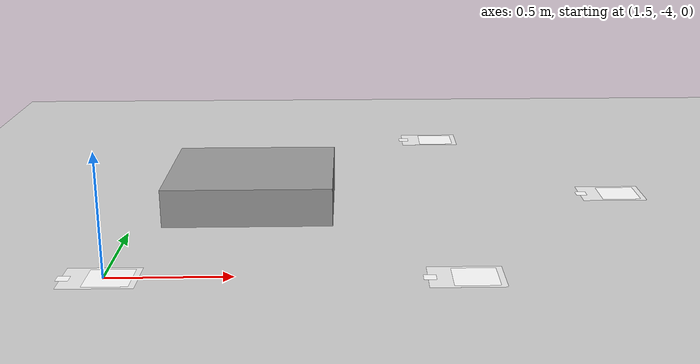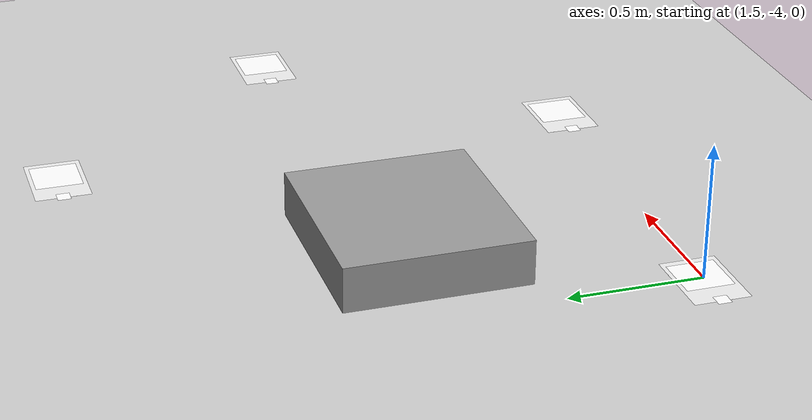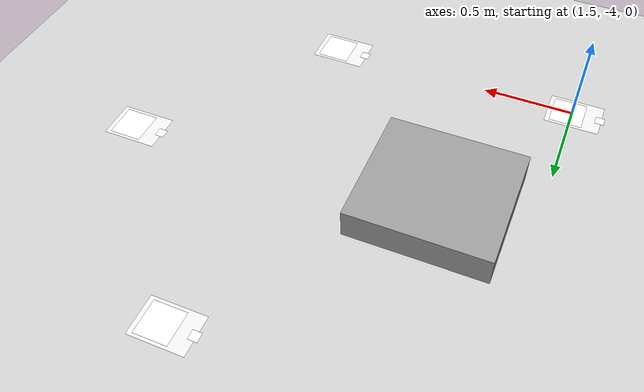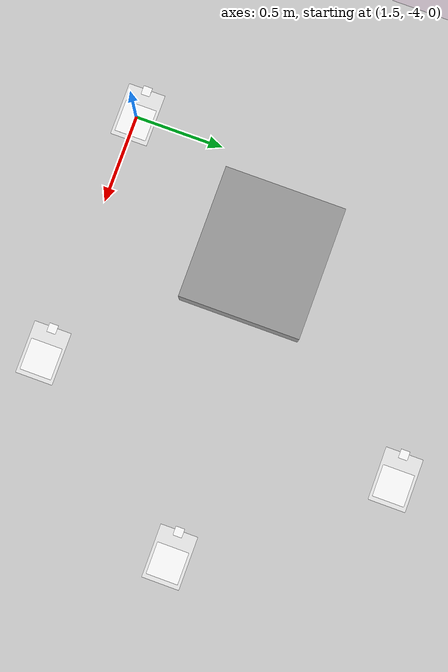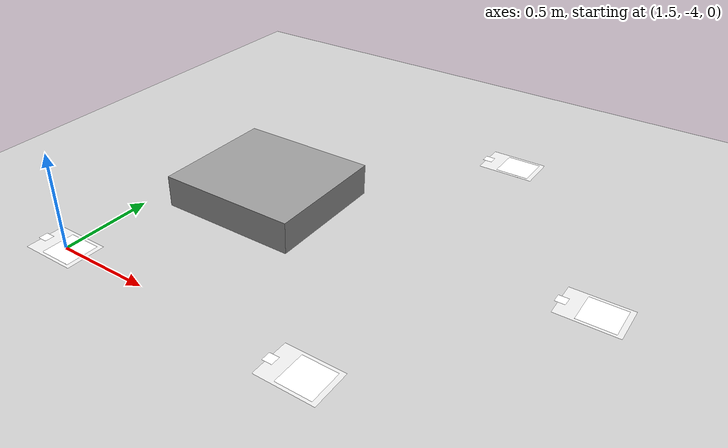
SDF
<sdf version="1.7">
 <world name="default">
  <model name="ground_plane">
   <static>1</static>
   <link name="link">
    <collision name="collision">
     <geometry><plane><normal>0 0 1</normal><size>100 100</size></plane></geometry>
     <surface>
      <contact><collide_bitmask>65535</collide_bitmask></contact>
      <friction><ode><mu>100</mu><mu2>50</mu2></ode></friction>
     </surface>
    </collision>
    <visual name="visual">
     <cast_shadows>0</cast_shadows>
     <geometry><plane><normal>0 0 1</normal><size>100 100</size></plane></geometry>
     <material>
      <script><uri>file://media/materials/scripts/gazebo.material</uri><name>Gazebo/Grey</name></script>
     </material>
    </visual>
   </link>
  </model>
  <model name="unit_box_clone">
   <pose>1.998 -3.09322 0.08405 -0 -0 -0</pose>
   <link name="link">
    <inertial>
     <mass>1</mass>
     <inertia>
      <ixx>0.166667</ixx>
      <ixy>0</ixy>
      <ixz>0</ixz>
      <iyy>0.166667</iyy>
      <iyz>0</iyz>
      <izz>0.166667</izz>
     </inertia>
    </inertial>
    <collision name="collision"><geometry><box><size>0.74157 0.678937 0.1681</size></box></geometry></collision>
    <visual name="visual">
     <geometry><box><size>0.74157 0.678937 0.1681</size></box></geometry>
     <material>
      <script><name>Gazebo/Grey</name><uri>file://media/materials/scripts/gazebo.material</uri></script>
     </material>
    </visual>
   </link>
  </model>
  <model name="aruco_visual_marker_2_pad">
   <frame name="aruco_visual_marker_2::__model__" attached_to="aruco_visual_marker_2::marker">
    <pose relative_to="__model__">0 0 0 0 -0 0</pose>
   </frame>
   <link name="aruco_visual_marker_2::marker">
    <pose relative_to="aruco_visual_marker_2::__model__">0 0 0 0 -0 0</pose>
    <visual name="visual">
     <geometry><box><size>0.1778 0.1778 1e-05</size></box></geometry>
     <material>
      <script>
       <uri>model://aruco_visual_marker_2/materials/scripts</uri>
       <uri>model://aruco_visual_marker_2/materials/textures</uri>
       <name>ArucoVisualMarker2/Marker</name>
      </script>
      <ambient>1 1 1 1</ambient>
      <diffuse>1 1 1 1</diffuse>
      <specular>0 0 0 1</specular>
      <emissive>1 1 1 0</emissive>
      <shader type="vertex"><normal_map>__default__</normal_map></shader>
     </material>
    </visual>
    <collision name="collision"><geometry><box><size>0.1778 0.1778 1e-05</size></box></geometry></collision>
   </link>
   <link name="aruco_visual_marker_2::marker_pad">
    <pose relative_to="aruco_visual_marker_2::marker">0 0 -1e-05 0 -0 0</pose>
    <visual name="visual">
     <geometry><box><size>0.1778 0.1778 1e-05</size></box></geometry>
     <material>
      <lighting>1</lighting>
      <script><uri>file://media/materials/scripts/gazebo.material</uri><name>Gazebo/White</name></script>
      <ambient>0.3 0.3 0.3 1</ambient>
      <diffuse>0.7 0.7 0.7 1</diffuse>
      <specular>0.01 0.01 0.01 1</specular>
      <emissive>1 1 1 0</emissive>
      <shader type="vertex"><normal_map>__default__</normal_map></shader>
     </material>
    </visual>
    <collision name="collision"><geometry><box><size>0.1778 0.1778 1e-05</size></box></geometry></collision>
   </link>
   <joint name="aruco_visual_marker_2::marker_JOINT_marker_pad" type="revolute">
    <parent>aruco_visual_marker_2::marker</parent>
    <child>aruco_visual_marker_2::marker_pad</child>
    <axis>
     <xyz>0 0 1</xyz>
     <limit><upper>0</upper><lower>0</lower></limit>
     <dynamics><spring_reference>0</spring_reference><spring_stiffness>0</spring_stiffness></dynamics>
    </axis>
   </joint>
   <static>1</static>
   <link name="marker_pad_large">
    <pose relative_to="aruco_visual_marker_2::marker">-0.035 0 -1e-05 0 -0 0</pose>
    <visual name="visual">
     <geometry><box><size>0.297 0.21 1e-05</size></box></geometry>
     <material>
      <lighting>1</lighting>
      <script><uri>file://media/materials/scripts/gazebo.material</uri><name>Gazebo/White</name></script>
      <ambient>0.3 0.3 0.3 1</ambient>
      <diffuse>0.7 0.7 0.7 1</diffuse>
      <specular>0.01 0.01 0.01 1</specular>
      <emissive>1 1 1 0</emissive>
      <shader type="vertex"><normal_map>__default__</normal_map></shader>
     </material>
    </visual>
    <collision name="collision">
     <geometry><box><size>0.297 0.21 1e-05</size></box></geometry>
     <surface>
      <friction>
       <ode><mu>1</mu><mu2>1</mu2><fdir1>0 0 0</fdir1><slip1>0</slip1><slip2>0</slip2></ode>
       <torsional>
        <coefficient>1</coefficient>
        <patch_radius>0</patch_radius>
        <surface_radius>0</surface_radius>
        <use_patch_radius>1</use_patch_radius>
        <ode><slip>0</slip></ode>
       </torsional>
      </friction>
      <bounce><restitution_coefficient>0</restitution_coefficient><threshold>1e+06</threshold></bounce>
      <contact>
       <collide_without_contact>0</collide_without_contact>
       <collide_without_contact_bitmask>1</collide_without_contact_bitmask>
       <collide_bitmask>1</collide_bitmask>
       <ode>
        <soft_cfm>0</soft_cfm>
        <soft_erp>0.2</soft_erp>
        <kp>1e+13</kp>
        <kd>1</kd>
        <max_vel>0.01</max_vel>
        <min_depth>0</min_depth>
       </ode>
       <bullet>
        <split_impulse>1</split_impulse>
        <split_impulse_penetration_threshold>-0.01</split_impulse_penetration_threshold>
        <soft_cfm>0</soft_cfm>
        <soft_erp>0.2</soft_erp>
        <kp>1e+13</kp>
        <kd>1</kd>
       </bullet>
      </contact>
     </surface>
    </collision>
   </link>
   <link name="marker_num">
    <pose relative_to="marker_pad_large">-0.14 0 1e-05 0 -0 0</pose>
    <visual name="visual">
     <geometry><box><size>0.05 0.05 1e-05</size></box></geometry>
     <material>
      <script>
       <uri>model://aruco_visual_marker_2_pad/materials/scripts</uri>
       <uri>model://aruco_visual_marker_2_pad/materials/textures</uri>
       <name>ArucoVisualMarker2/Num</name>
      </script>
      <ambient>1 1 1 1</ambient>
      <diffuse>1 1 1 1</diffuse>
      <specular>0 0 0 1</specular>
      <emissive>1 1 1 0</emissive>
      <shader type="vertex"><normal_map>__default__</normal_map></shader>
     </material>
    </visual>
    <collision name="collision">
     <geometry><box><size>0.05 0.05 1e-05</size></box></geometry>
     <surface>
      <friction>
       <ode><mu>1</mu><mu2>1</mu2><fdir1>0 0 0</fdir1><slip1>0</slip1><slip2>0</slip2></ode>
       <torsional>
        <coefficient>1</coefficient>
        <patch_radius>0</patch_radius>
        <surface_radius>0</surface_radius>
        <use_patch_radius>1</use_patch_radius>
        <ode><slip>0</slip></ode>
       </torsional>
      </friction>
      <bounce><restitution_coefficient>0</restitution_coefficient><threshold>1e+06</threshold></bounce>
      <contact>
       <collide_without_contact>0</collide_without_contact>
       <collide_without_contact_bitmask>1</collide_without_contact_bitmask>
       <collide_bitmask>1</collide_bitmask>
       <ode>
        <soft_cfm>0</soft_cfm>
        <soft_erp>0.2</soft_erp>
        <kp>1e+13</kp>
        <kd>1</kd>
        <max_vel>0.01</max_vel>
        <min_depth>0</min_depth>
       </ode>
       <bullet>
        <split_impulse>1</split_impulse>
        <split_impulse_penetration_threshold>-0.01</split_impulse_penetration_threshold>
        <soft_cfm>0</soft_cfm>
        <soft_erp>0.2</soft_erp>
        <kp>1e+13</kp>
        <kd>1</kd>
       </bullet>
      </contact>
     </surface>
    </collision>
   </link>
   <joint name="marker_JOINT_marker_pad_large" type="revolute">
    <parent>aruco_visual_marker_2::marker</parent>
    <child>marker_pad_large</child>
    <axis>
     <xyz>0 0 1</xyz>
     <limit><upper>0</upper><lower>0</lower></limit>
     <dynamics><spring_reference>0</spring_reference><spring_stiffness>0</spring_stiffness></dynamics>
    </axis>
   </joint>
   <joint name="pad_large_JOINT_marker_num" type="revolute">
    <parent>marker_pad_large</parent>
    <child>marker_num</child>
    <axis>
     <xyz>0 0 1</xyz>
     <limit><upper>0</upper><lower>0</lower></limit>
     <dynamics><spring_reference>0</spring_reference><spring_stiffness>0</spring_stiffness></dynamics>
    </axis>
   </joint>
   <static>1</static>
   <pose>2.91764 -2.01286 0 0 -0 0</pose>
  </model>
  <model name="aruco_visual_marker_3_pad">
   <frame name="aruco_visual_marker_3::__model__" attached_to="aruco_visual_marker_3::marker">
    <pose relative_to="__model__">0 0 0 0 -0 0</pose>
   </frame>
   <link name="aruco_visual_marker_3::marker">
    <pose relative_to="aruco_visual_marker_3::__model__">0 0 0 0 -0 0</pose>
    <visual name="visual">
     <geometry><box><size>0.1778 0.1778 1e-05</size></box></geometry>
     <material>
      <script>
       <uri>model://aruco_visual_marker_3/materials/scripts</uri>
       <uri>model://aruco_visual_marker_3/materials/textures</uri>
       <name>ArucoVisualMarker3/Marker</name>
      </script>
      <ambient>1 1 1 1</ambient>
      <diffuse>1 1 1 1</diffuse>
      <specular>0 0 0 1</specular>
      <emissive>1 1 1 0</emissive>
      <shader type="vertex"><normal_map>__default__</normal_map></shader>
     </material>
    </visual>
    <collision name="collision"><geometry><box><size>0.1778 0.1778 1e-05</size></box></geometry></collision>
   </link>
   <link name="aruco_visual_marker_3::marker_pad">
    <pose relative_to="aruco_visual_marker_3::marker">0 0 -1e-05 0 -0 0</pose>
    <visual name="visual">
     <geometry><box><size>0.1778 0.1778 1e-05</size></box></geometry>
     <material>
      <lighting>1</lighting>
      <script><uri>file://media/materials/scripts/gazebo.material</uri><name>Gazebo/White</name></script>
      <ambient>0.3 0.3 0.3 1</ambient>
      <diffuse>0.7 0.7 0.7 1</diffuse>
      <specular>0.01 0.01 0.01 1</specular>
      <emissive>1 1 1 0</emissive>
      <shader type="vertex"><normal_map>__default__</normal_map></shader>
     </material>
    </visual>
    <collision name="collision"><geometry><box><size>0.1778 0.1778 1e-05</size></box></geometry></collision>
   </link>
   <joint name="aruco_visual_marker_3::marker_JOINT_marker_pad" type="revolute">
    <parent>aruco_visual_marker_3::marker</parent>
    <child>aruco_visual_marker_3::marker_pad</child>
    <axis>
     <xyz>0 0 1</xyz>
     <limit><upper>0</upper><lower>0</lower></limit>
     <dynamics><spring_reference>0</spring_reference><spring_stiffness>0</spring_stiffness></dynamics>
    </axis>
   </joint>
   <static>1</static>
   <link name="marker_pad_large">
    <pose relative_to="aruco_visual_marker_3::marker">-0.035 0 -1e-05 0 -0 0</pose>
    <visual name="visual">
     <geometry><box><size>0.297 0.21 1e-05</size></box></geometry>
     <material>
      <lighting>1</lighting>
      <script><uri>file://media/materials/scripts/gazebo.material</uri><name>Gazebo/White</name></script>
      <ambient>0.3 0.3 0.3 1</ambient>
      <diffuse>0.7 0.7 0.7 1</diffuse>
      <specular>0.01 0.01 0.01 1</specular>
      <emissive>1 1 1 0</emissive>
      <shader type="vertex"><normal_map>__default__</normal_map></shader>
     </material>
    </visual>
    <collision name="collision">
     <geometry><box><size>0.297 0.21 1e-05</size></box></geometry>
     <surface>
      <friction>
       <ode><mu>1</mu><mu2>1</mu2><fdir1>0 0 0</fdir1><slip1>0</slip1><slip2>0</slip2></ode>
       <torsional>
        <coefficient>1</coefficient>
        <patch_radius>0</patch_radius>
        <surface_radius>0</surface_radius>
        <use_patch_radius>1</use_patch_radius>
        <ode><slip>0</slip></ode>
       </torsional>
      </friction>
      <bounce><restitution_coefficient>0</restitution_coefficient><threshold>1e+06</threshold></bounce>
      <contact>
       <collide_without_contact>0</collide_without_contact>
       <collide_without_contact_bitmask>1</collide_without_contact_bitmask>
       <collide_bitmask>1</collide_bitmask>
       <ode>
        <soft_cfm>0</soft_cfm>
        <soft_erp>0.2</soft_erp>
        <kp>1e+13</kp>
        <kd>1</kd>
        <max_vel>0.01</max_vel>
        <min_depth>0</min_depth>
       </ode>
       <bullet>
        <split_impulse>1</split_impulse>
        <split_impulse_penetration_threshold>-0.01</split_impulse_penetration_threshold>
        <soft_cfm>0</soft_cfm>
        <soft_erp>0.2</soft_erp>
        <kp>1e+13</kp>
        <kd>1</kd>
       </bullet>
      </contact>
     </surface>
    </collision>
   </link>
   <link name="marker_num">
    <pose relative_to="marker_pad_large">-0.14 0 1e-05 0 -0 0</pose>
    <visual name="visual">
     <geometry><box><size>0.05 0.05 1e-05</size></box></geometry>
     <material>
      <script>
       <uri>model://aruco_visual_marker_3_pad/materials/scripts</uri>
       <uri>model://aruco_visual_marker_3_pad/materials/textures</uri>
       <name>ArucoVisualMarker3/Num</name>
      </script>
      <ambient>1 1 1 1</ambient>
      <diffuse>1 1 1 1</diffuse>
      <specular>0 0 0 1</specular>
      <emissive>1 1 1 0</emissive>
      <shader type="vertex"><normal_map>__default__</normal_map></shader>
     </material>
    </visual>
    <collision name="collision">
     <geometry><box><size>0.05 0.05 1e-05</size></box></geometry>
     <surface>
      <friction>
       <ode><mu>1</mu><mu2>1</mu2><fdir1>0 0 0</fdir1><slip1>0</slip1><slip2>0</slip2></ode>
       <torsional>
        <coefficient>1</coefficient>
        <patch_radius>0</patch_radius>
        <surface_radius>0</surface_radius>
        <use_patch_radius>1</use_patch_radius>
        <ode><slip>0</slip></ode>
       </torsional>
      </friction>
      <bounce><restitution_coefficient>0</restitution_coefficient><threshold>1e+06</threshold></bounce>
      <contact>
       <collide_without_contact>0</collide_without_contact>
       <collide_without_contact_bitmask>1</collide_without_contact_bitmask>
       <collide_bitmask>1</collide_bitmask>
       <ode>
        <soft_cfm>0</soft_cfm>
        <soft_erp>0.2</soft_erp>
        <kp>1e+13</kp>
        <kd>1</kd>
        <max_vel>0.01</max_vel>
        <min_depth>0</min_depth>
       </ode>
       <bullet>
        <split_impulse>1</split_impulse>
        <split_impulse_penetration_threshold>-0.01</split_impulse_penetration_threshold>
        <soft_cfm>0</soft_cfm>
        <soft_erp>0.2</soft_erp>
        <kp>1e+13</kp>
        <kd>1</kd>
       </bullet>
      </contact>
     </surface>
    </collision>
   </link>
   <joint name="marker_JOINT_marker_pad_large" type="revolute">
    <parent>aruco_visual_marker_3::marker</parent>
    <child>marker_pad_large</child>
    <axis>
     <xyz>0 0 1</xyz>
     <limit><upper>0</upper><lower>0</lower></limit>
     <dynamics><spring_reference>0</spring_reference><spring_stiffness>0</spring_stiffness></dynamics>
    </axis>
   </joint>
   <joint name="pad_large_JOINT_marker_num" type="revolute">
    <parent>marker_pad_large</parent>
    <child>marker_num</child>
    <axis>
     <xyz>0 0 1</xyz>
     <limit><upper>0</upper><lower>0</lower></limit>
     <dynamics><spring_reference>0</spring_reference><spring_stiffness>0</spring_stiffness></dynamics>
    </axis>
   </joint>
   <static>1</static>
   <pose>3.71321 -3.00631 0 0 -0 0</pose>
  </model>
  <model name="aruco_visual_marker_4_pad">
   <frame name="aruco_visual_marker_4::__model__" attached_to="aruco_visual_marker_4::marker">
    <pose relative_to="__model__">0 0 0 0 -0 0</pose>
   </frame>
   <link name="aruco_visual_marker_4::marker">
    <pose relative_to="aruco_visual_marker_4::__model__">0 0 0 0 -0 0</pose>
    <visual name="visual">
     <geometry><box><size>0.1778 0.1778 1e-05</size></box></geometry>
     <material>
      <script>
       <uri>model://aruco_visual_marker_4/materials/scripts</uri>
       <uri>model://aruco_visual_marker_4/materials/textures</uri>
       <name>ArucoVisualMarker4/Marker</name>
      </script>
      <ambient>1 1 1 1</ambient>
      <diffuse>1 1 1 1</diffuse>
      <specular>0 0 0 1</specular>
      <emissive>1 1 1 0</emissive>
      <shader type="vertex"><normal_map>__default__</normal_map></shader>
     </material>
    </visual>
    <collision name="collision"><geometry><box><size>0.1778 0.1778 1e-05</size></box></geometry></collision>
   </link>
   <link name="aruco_visual_marker_4::marker_pad">
    <pose relative_to="aruco_visual_marker_4::marker">0 0 -1e-05 0 -0 0</pose>
    <visual name="visual">
     <geometry><box><size>0.1778 0.1778 1e-05</size></box></geometry>
     <material>
      <lighting>1</lighting>
      <script><uri>file://media/materials/scripts/gazebo.material</uri><name>Gazebo/White</name></script>
      <ambient>0.3 0.3 0.3 1</ambient>
      <diffuse>0.7 0.7 0.7 1</diffuse>
      <specular>0.01 0.01 0.01 1</specular>
      <emissive>1 1 1 0</emissive>
      <shader type="vertex"><normal_map>__default__</normal_map></shader>
     </material>
    </visual>
    <collision name="collision"><geometry><box><size>0.1778 0.1778 1e-05</size></box></geometry></collision>
   </link>
   <joint name="aruco_visual_marker_4::marker_JOINT_marker_pad" type="revolute">
    <parent>aruco_visual_marker_4::marker</parent>
    <child>aruco_visual_marker_4::marker_pad</child>
    <axis>
     <xyz>0 0 1</xyz>
     <limit><upper>0</upper><lower>0</lower></limit>
     <dynamics><spring_reference>0</spring_reference><spring_stiffness>0</spring_stiffness></dynamics>
    </axis>
   </joint>
   <static>1</static>
   <link name="marker_pad_large">
    <pose relative_to="aruco_visual_marker_4::marker">-0.035 0 -1e-05 0 -0 0</pose>
    <visual name="visual">
     <geometry><box><size>0.297 0.21 1e-05</size></box></geometry>
     <material>
      <lighting>1</lighting>
      <script><uri>file://media/materials/scripts/gazebo.material</uri><name>Gazebo/White</name></script>
      <ambient>0.3 0.3 0.3 1</ambient>
      <diffuse>0.7 0.7 0.7 1</diffuse>
      <specular>0.01 0.01 0.01 1</specular>
      <emissive>1 1 1 0</emissive>
      <shader type="vertex"><normal_map>__default__</normal_map></shader>
     </material>
    </visual>
    <collision name="collision">
     <geometry><box><size>0.297 0.21 1e-05</size></box></geometry>
     <surface>
      <friction>
       <ode><mu>1</mu><mu2>1</mu2><fdir1>0 0 0</fdir1><slip1>0</slip1><slip2>0</slip2></ode>
       <torsional>
        <coefficient>1</coefficient>
        <patch_radius>0</patch_radius>
        <surface_radius>0</surface_radius>
        <use_patch_radius>1</use_patch_radius>
        <ode><slip>0</slip></ode>
       </torsional>
      </friction>
      <bounce><restitution_coefficient>0</restitution_coefficient><threshold>1e+06</threshold></bounce>
      <contact>
       <collide_without_contact>0</collide_without_contact>
       <collide_without_contact_bitmask>1</collide_without_contact_bitmask>
       <collide_bitmask>1</collide_bitmask>
       <ode>
        <soft_cfm>0</soft_cfm>
        <soft_erp>0.2</soft_erp>
        <kp>1e+13</kp>
        <kd>1</kd>
        <max_vel>0.01</max_vel>
        <min_depth>0</min_depth>
       </ode>
       <bullet>
        <split_impulse>1</split_impulse>
        <split_impulse_penetration_threshold>-0.01</split_impulse_penetration_threshold>
        <soft_cfm>0</soft_cfm>
        <soft_erp>0.2</soft_erp>
        <kp>1e+13</kp>
        <kd>1</kd>
       </bullet>
      </contact>
     </surface>
    </collision>
   </link>
   <link name="marker_num">
    <pose relative_to="marker_pad_large">-0.14 0 1e-05 0 -0 0</pose>
    <visual name="visual">
     <geometry><box><size>0.05 0.05 1e-05</size></box></geometry>
     <material>
      <script>
       <uri>model://aruco_visual_marker_4_pad/materials/scripts</uri>
       <uri>model://aruco_visual_marker_4_pad/materials/textures</uri>
       <name>ArucoVisualMarker4/Num</name>
      </script>
      <ambient>1 1 1 1</ambient>
      <diffuse>1 1 1 1</diffuse>
      <specular>0 0 0 1</specular>
      <emissive>1 1 1 0</emissive>
      <shader type="vertex"><normal_map>__default__</normal_map></shader>
     </material>
    </visual>
    <collision name="collision">
     <geometry><box><size>0.05 0.05 1e-05</size></box></geometry>
     <surface>
      <friction>
       <ode><mu>1</mu><mu2>1</mu2><fdir1>0 0 0</fdir1><slip1>0</slip1><slip2>0</slip2></ode>
       <torsional>
        <coefficient>1</coefficient>
        <patch_radius>0</patch_radius>
        <surface_radius>0</surface_radius>
        <use_patch_radius>1</use_patch_radius>
        <ode><slip>0</slip></ode>
       </torsional>
      </friction>
      <bounce><restitution_coefficient>0</restitution_coefficient><threshold>1e+06</threshold></bounce>
      <contact>
       <collide_without_contact>0</collide_without_contact>
       <collide_without_contact_bitmask>1</collide_without_contact_bitmask>
       <collide_bitmask>1</collide_bitmask>
       <ode>
        <soft_cfm>0</soft_cfm>
        <soft_erp>0.2</soft_erp>
        <kp>1e+13</kp>
        <kd>1</kd>
        <max_vel>0.01</max_vel>
        <min_depth>0</min_depth>
       </ode>
       <bullet>
        <split_impulse>1</split_impulse>
        <split_impulse_penetration_threshold>-0.01</split_impulse_penetration_threshold>
        <soft_cfm>0</soft_cfm>
        <soft_erp>0.2</soft_erp>
        <kp>1e+13</kp>
        <kd>1</kd>
       </bullet>
      </contact>
     </surface>
    </collision>
   </link>
   <joint name="marker_JOINT_marker_pad_large" type="revolute">
    <parent>aruco_visual_marker_4::marker</parent>
    <child>marker_pad_large</child>
    <axis>
     <xyz>0 0 1</xyz>
     <limit><upper>0</upper><lower>0</lower></limit>
     <dynamics><spring_reference>0</spring_reference><spring_stiffness>0</spring_stiffness></dynamics>
    </axis>
   </joint>
   <joint name="pad_large_JOINT_marker_num" type="revolute">
    <parent>marker_pad_large</parent>
    <child>marker_num</child>
    <axis>
     <xyz>0 0 1</xyz>
     <limit><upper>0</upper><lower>0</lower></limit>
     <dynamics><spring_reference>0</spring_reference><spring_stiffness>0</spring_stiffness></dynamics>
    </axis>
   </joint>
   <static>1</static>
   <pose>2.92409 -4.02132 0 0 -0 0</pose>
  </model>
  <model name="aruco_visual_marker_5_pad">
   <frame name="aruco_visual_marker_5::__model__" attached_to="aruco_visual_marker_5::marker">
    <pose relative_to="__model__">0 0 0 0 -0 0</pose>
   </frame>
   <link name="aruco_visual_marker_5::marker">
    <pose relative_to="aruco_visual_marker_5::__model__">0 0 0 0 -0 0</pose>
    <visual name="visual">
     <geometry><box><size>0.1778 0.1778 1e-05</size></box></geometry>
     <material>
      <script>
       <uri>model://aruco_visual_marker_5/materials/scripts</uri>
       <uri>model://aruco_visual_marker_5/materials/textures</uri>
       <name>ArucoVisualMarker5/Marker</name>
      </script>
      <ambient>1 1 1 1</ambient>
      <diffuse>1 1 1 1</diffuse>
      <specular>0 0 0 1</specular>
      <emissive>1 1 1 0</emissive>
      <shader type="vertex"><normal_map>__default__</normal_map></shader>
     </material>
    </visual>
    <collision name="collision"><geometry><box><size>0.1778 0.1778 1e-05</size></box></geometry></collision>
   </link>
   <link name="aruco_visual_marker_5::marker_pad">
    <pose relative_to="aruco_visual_marker_5::marker">0 0 -1e-05 0 -0 0</pose>
    <visual name="visual">
     <geometry><box><size>0.1778 0.1778 1e-05</size></box></geometry>
     <material>
      <lighting>1</lighting>
      <script><uri>file://media/materials/scripts/gazebo.material</uri><name>Gazebo/White</name></script>
      <ambient>0.3 0.3 0.3 1</ambient>
      <diffuse>0.7 0.7 0.7 1</diffuse>
      <specular>0.01 0.01 0.01 1</specular>
      <emissive>1 1 1 0</emissive>
      <shader type="vertex"><normal_map>__default__</normal_map></shader>
     </material>
    </visual>
    <collision name="collision"><geometry><box><size>0.1778 0.1778 1e-05</size></box></geometry></collision>
   </link>
   <joint name="aruco_visual_marker_5::marker_JOINT_marker_pad" type="revolute">
    <parent>aruco_visual_marker_5::marker</parent>
    <child>aruco_visual_marker_5::marker_pad</child>
    <axis>
     <xyz>0 0 1</xyz>
     <limit><upper>0</upper><lower>0</lower></limit>
     <dynamics><spring_reference>0</spring_reference><spring_stiffness>0</spring_stiffness></dynamics>
    </axis>
   </joint>
   <static>1</static>
   <link name="marker_pad_large">
    <pose relative_to="aruco_visual_marker_5::marker">-0.035 0 -1e-05 0 -0 0</pose>
    <visual name="visual">
     <geometry><box><size>0.297 0.21 1e-05</size></box></geometry>
     <material>
      <lighting>1</lighting>
      <script><uri>file://media/materials/scripts/gazebo.material</uri><name>Gazebo/White</name></script>
      <ambient>0.3 0.3 0.3 1</ambient>
      <diffuse>0.7 0.7 0.7 1</diffuse>
      <specular>0.01 0.01 0.01 1</specular>
      <emissive>1 1 1 0</emissive>
      <shader type="vertex"><normal_map>__default__</normal_map></shader>
     </material>
    </visual>
    <collision name="collision">
     <geometry><box><size>0.297 0.21 1e-05</size></box></geometry>
     <surface>
      <friction>
       <ode><mu>1</mu><mu2>1</mu2><fdir1>0 0 0</fdir1><slip1>0</slip1><slip2>0</slip2></ode>
       <torsional>
        <coefficient>1</coefficient>
        <patch_radius>0</patch_radius>
        <surface_radius>0</surface_radius>
        <use_patch_radius>1</use_patch_radius>
        <ode><slip>0</slip></ode>
       </torsional>
      </friction>
      <bounce><restitution_coefficient>0</restitution_coefficient><threshold>1e+06</threshold></bounce>
      <contact>
       <collide_without_contact>0</collide_without_contact>
       <collide_without_contact_bitmask>1</collide_without_contact_bitmask>
       <collide_bitmask>1</collide_bitmask>
       <ode>
        <soft_cfm>0</soft_cfm>
        <soft_erp>0.2</soft_erp>
        <kp>1e+13</kp>
        <kd>1</kd>
        <max_vel>0.01</max_vel>
        <min_depth>0</min_depth>
       </ode>
       <bullet>
        <split_impulse>1</split_impulse>
        <split_impulse_penetration_threshold>-0.01</split_impulse_penetration_threshold>
        <soft_cfm>0</soft_cfm>
        <soft_erp>0.2</soft_erp>
        <kp>1e+13</kp>
        <kd>1</kd>
       </bullet>
      </contact>
     </surface>
    </collision>
   </link>
   <link name="marker_num">
    <pose relative_to="marker_pad_large">-0.14 0 1e-05 0 -0 0</pose>
    <visual name="visual">
     <geometry><box><size>0.05 0.05 1e-05</size></box></geometry>
     <material>
      <script>
       <uri>model://aruco_visual_marker_5_pad/materials/scripts</uri>
       <uri>model://aruco_visual_marker_5_pad/materials/textures</uri>
       <name>ArucoVisualMarker5/Num</name>
      </script>
      <ambient>1 1 1 1</ambient>
      <diffuse>1 1 1 1</diffuse>
      <specular>0 0 0 1</specular>
      <emissive>1 1 1 0</emissive>
      <shader type="vertex"><normal_map>__default__</normal_map></shader>
     </material>
    </visual>
    <collision name="collision">
     <geometry><box><size>0.05 0.05 1e-05</size></box></geometry>
     <surface>
      <friction>
       <ode><mu>1</mu><mu2>1</mu2><fdir1>0 0 0</fdir1><slip1>0</slip1><slip2>0</slip2></ode>
       <torsional>
        <coefficient>1</coefficient>
        <patch_radius>0</patch_radius>
        <surface_radius>0</surface_radius>
        <use_patch_radius>1</use_patch_radius>
        <ode><slip>0</slip></ode>
       </torsional>
      </friction>
      <bounce><restitution_coefficient>0</restitution_coefficient><threshold>1e+06</threshold></bounce>
      <contact>
       <collide_without_contact>0</collide_without_contact>
       <collide_without_contact_bitmask>1</collide_without_contact_bitmask>
       <collide_bitmask>1</collide_bitmask>
       <ode>
        <soft_cfm>0</soft_cfm>
        <soft_erp>0.2</soft_erp>
        <kp>1e+13</kp>
        <kd>1</kd>
        <max_vel>0.01</max_vel>
        <min_depth>0</min_depth>
       </ode>
       <bullet>
        <split_impulse>1</split_impulse>
        <split_impulse_penetration_threshold>-0.01</split_impulse_penetration_threshold>
        <soft_cfm>0</soft_cfm>
        <soft_erp>0.2</soft_erp>
        <kp>1e+13</kp>
        <kd>1</kd>
       </bullet>
      </contact>
     </surface>
    </collision>
   </link>
   <joint name="marker_JOINT_marker_pad_large" type="revolute">
    <parent>aruco_visual_marker_5::marker</parent>
    <child>marker_pad_large</child>
    <axis>
     <xyz>0 0 1</xyz>
     <limit><upper>0</upper><lower>0</lower></limit>
     <dynamics><spring_reference>0</spring_reference><spring_stiffness>0</spring_stiffness></dynamics>
    </axis>
   </joint>
   <joint name="pad_large_JOINT_marker_num" type="revolute">
    <parent>marker_pad_large</parent>
    <child>marker_num</child>
    <axis>
     <xyz>0 0 1</xyz>
     <limit><upper>0</upper><lower>0</lower></limit>
     <dynamics><spring_reference>0</spring_reference><spring_stiffness>0</spring_stiffness></dynamics>
    </axis>
   </joint>
   <static>1</static>
   <pose>1.52127 -3.99685 0 0 -0 0</pose>
  </model>
 </world>
</sdf>
